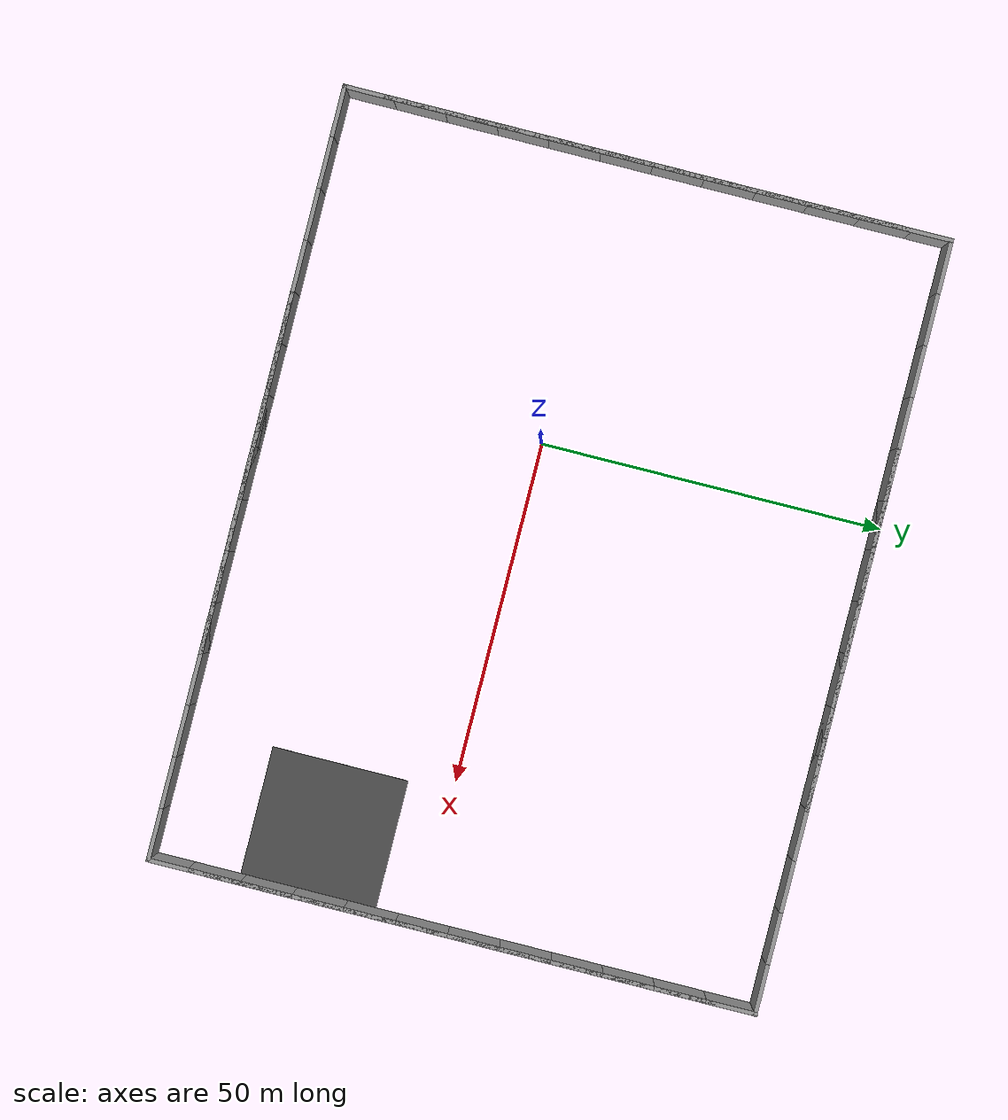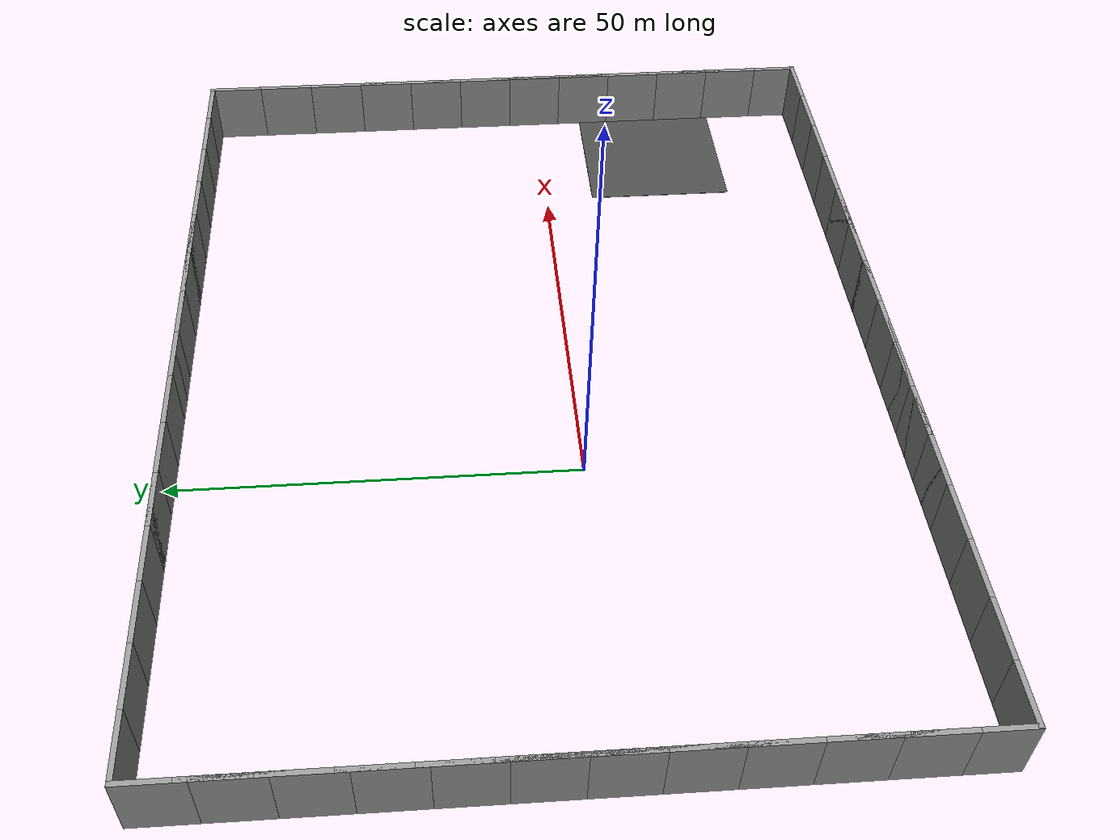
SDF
<sdf version="1.7">
 <world name="default">
  <scene>
   <grid>0</grid>
   <origin_visual>0</origin_visual>
   <ambient>0.85 0.85 0.85 1</ambient>
   <sky><clouds><speed>12</speed></clouds></sky>
   <background>0.35 0.35 0.35 1</background>
   <shadows>1</shadows>
  </scene>
  <physics name="default_physics" default="0" type="ode">
   <max_step_size>0.005</max_step_size>
   <real_time_factor>1</real_time_factor>
   <real_time_update_rate>200</real_time_update_rate>
  </physics>
  <light name="sun" type="directional">
   <pose>0 0 1000 0 -0 0</pose>
   <diffuse>0.8 0.8 0.8 1</diffuse>
   <specular>0.5 0.5 0.5 1</specular>
   <attenuation>
    <range>1000</range>
    <constant>0.9</constant>
    <linear>0.01</linear>
    <quadratic>0.001</quadratic>
   </attenuation>
   <direction>-0.5 0.1 -0.4</direction>
   <spot><inner_angle>0</inner_angle><outer_angle>0</outer_angle><falloff>0</falloff></spot>
  </light>
  <model name="ground_plane">
   <static>1</static>
   <link name="link">
    <collision name="collision">
     <geometry><plane><normal>0 0 1</normal><size>100 100</size></plane></geometry>
     <surface><friction><ode><mu>100</mu><mu2>50</mu2></ode></friction></surface>
    </collision>
   </link>
  </model>
  <model name="asphalt_plane_74">
   <static>1</static>
   <pose>61.581 -16.664 0 0 -0 0</pose>
   <link name="link">
    <visual name="visual">
     <geometry><box><size>20 20 0.05</size></box></geometry>
     <material>
      <script>
       <uri>model://asphalt_plane/materials/scripts</uri>
       <uri>model://asphalt_plane/materials/textures</uri>
       <name>vrc/asphalt</name>
      </script>
     </material>
    </visual>
   </link>
  </model>
  <gravity>0 0 -9.8</gravity>
  <magnetic_field>6e-06 2.3e-05 -4.2e-05</magnetic_field>
  <atmosphere type="adiabatic"/>
  <spherical_coordinates>
   <surface_model>EARTH_WGS84</surface_model>
   <latitude_deg>0</latitude_deg>
   <longitude_deg>0</longitude_deg>
   <elevation>0</elevation>
   <heading_deg>0</heading_deg>
  </spherical_coordinates>
  <model name="grey_wall">
   <static>1</static>
   <link name="link">
    <pose>0 0 1.4 0 -0 0</pose>
    <collision name="collision"><geometry><box><size>7.5 0.2 2.8</size></box></geometry></collision>
    <visual name="visual">
     <cast_shadows>0</cast_shadows>
     <geometry><box><size>7.5 0.2 2.8</size></box></geometry>
     <material>
      <script>
       <uri>model://grey_wall/materials/scripts</uri>
       <uri>model://grey_wall/materials/textures</uri>
       <name>vrc/grey_wall</name>
      </script>
     </material>
    </visual>
   </link>
   <pose>-10.2398 49 0 0 -0 0</pose>
  </model>
  <model name="grey_wall_clone">
   <static>1</static>
   <link name="link">
    <pose>0 0 1.4 0 -0 0</pose>
    <collision name="collision"><geometry><box><size>7.5 0.2 2.8</size></box></geometry></collision>
    <visual name="visual">
     <cast_shadows>0</cast_shadows>
     <geometry><box><size>7.5 0.2 2.8</size></box></geometry>
     <material>
      <script>
       <uri>model://grey_wall/materials/scripts</uri>
       <uri>model://grey_wall/materials/textures</uri>
       <name>vrc/grey_wall</name>
      </script>
     </material>
    </visual>
   </link>
   <pose>-3 49 0 0 -0 0</pose>
  </model>
  <model name="grey_wall_clone_clone">
   <static>1</static>
   <link name="link">
    <pose>0 0 1.4 0 -0 0</pose>
    <collision name="collision"><geometry><box><size>7.5 0.2 2.8</size></box></geometry></collision>
    <visual name="visual">
     <cast_shadows>0</cast_shadows>
     <geometry><box><size>7.5 0.2 2.8</size></box></geometry>
     <material>
      <script>
       <uri>model://grey_wall/materials/scripts</uri>
       <uri>model://grey_wall/materials/textures</uri>
       <name>vrc/grey_wall</name>
      </script>
     </material>
    </visual>
   </link>
   <pose>4 49 0 0 -0 0</pose>
  </model>
  <model name="grey_wall_clone_0">
   <static>1</static>
   <link name="link">
    <pose>0 0 1.4 0 -0 0</pose>
    <collision name="collision"><geometry><box><size>7.5 0.2 2.8</size></box></geometry></collision>
    <visual name="visual">
     <cast_shadows>0</cast_shadows>
     <geometry><box><size>7.5 0.2 2.8</size></box></geometry>
     <material>
      <script>
       <uri>model://grey_wall/materials/scripts</uri>
       <uri>model://grey_wall/materials/textures</uri>
       <name>vrc/grey_wall</name>
      </script>
     </material>
    </visual>
   </link>
   <pose>11 49 0 0 -0 0</pose>
  </model>
  <model name="grey_wall_clone_1">
   <static>1</static>
   <link name="link">
    <pose>0 0 1.4 0 -0 0</pose>
    <collision name="collision"><geometry><box><size>7.5 0.2 2.8</size></box></geometry></collision>
    <visual name="visual">
     <cast_shadows>0</cast_shadows>
     <geometry><box><size>7.5 0.2 2.8</size></box></geometry>
     <material>
      <script>
       <uri>model://grey_wall/materials/scripts</uri>
       <uri>model://grey_wall/materials/textures</uri>
       <name>vrc/grey_wall</name>
      </script>
     </material>
    </visual>
   </link>
   <pose>18.3436 49 0 0 -0 0</pose>
  </model>
  <model name="grey_wall_clone_2">
   <static>1</static>
   <link name="link">
    <pose>0 0 1.4 0 -0 0</pose>
    <collision name="collision"><geometry><box><size>7.5 0.2 2.8</size></box></geometry></collision>
    <visual name="visual">
     <cast_shadows>0</cast_shadows>
     <geometry><box><size>7.5 0.2 2.8</size></box></geometry>
     <material>
      <script>
       <uri>model://grey_wall/materials/scripts</uri>
       <uri>model://grey_wall/materials/textures</uri>
       <name>vrc/grey_wall</name>
      </script>
     </material>
    </visual>
   </link>
   <pose>25.3604 49 0 0 -0 0</pose>
  </model>
  <model name="grey_wall_clone_3">
   <static>1</static>
   <link name="link">
    <pose>0 0 1.4 0 -0 0</pose>
    <collision name="collision"><geometry><box><size>7.5 0.2 2.8</size></box></geometry></collision>
    <visual name="visual">
     <cast_shadows>0</cast_shadows>
     <geometry><box><size>7.5 0.2 2.8</size></box></geometry>
     <material>
      <script>
       <uri>model://grey_wall/materials/scripts</uri>
       <uri>model://grey_wall/materials/textures</uri>
       <name>vrc/grey_wall</name>
      </script>
     </material>
    </visual>
   </link>
   <pose>32.4506 49 0 0 -0 0</pose>
  </model>
  <model name="grey_wall_long">
   <static>1</static>
   <link name="wall_0">
    <pose>-37.5 0 4.2 0 -0 0</pose>
    <collision name="collision"><geometry><box><size>7.5 0.6 8.4</size></box></geometry></collision>
    <visual name="visual">
     <cast_shadows>0</cast_shadows>
     <geometry><box><size>7.5 0.6 8.4</size></box></geometry>
     <material>
      <script>
       <uri>model://grey_wall/materials/scripts</uri>
       <uri>model://grey_wall/materials/textures</uri>
       <name>vrc/grey_wall</name>
      </script>
     </material>
     <double_sided>1</double_sided>
    </visual>
   </link>
   <link name="wall_1">
    <pose>-30 0 4.2 0 -0 0</pose>
    <collision name="collision"><geometry><box><size>7.5 0.6 8.4</size></box></geometry></collision>
    <visual name="visual">
     <geometry><box><size>7.5 0.6 8.4</size></box></geometry>
     <material>
      <script>
       <uri>model://grey_wall/materials/scripts</uri>
       <uri>model://grey_wall/materials/textures</uri>
       <name>vrc/grey_wall</name>
      </script>
     </material>
     <double_sided>1</double_sided>
    </visual>
   </link>
   <link name="wall_2">
    <pose>-22.5 0 4.2 0 -0 0</pose>
    <collision name="collision"><geometry><box><size>7.5 0.6 8.4</size></box></geometry></collision>
    <visual name="visual">
     <geometry><box><size>7.5 0.6 8.4</size></box></geometry>
     <material>
      <script>
       <uri>model://grey_wall/materials/scripts</uri>
       <uri>model://grey_wall/materials/textures</uri>
       <name>vrc/grey_wall</name>
      </script>
     </material>
     <double_sided>1</double_sided>
    </visual>
   </link>
   <link name="wall_3">
    <pose>-15 0 4.2 0 -0 0</pose>
    <collision name="collision"><geometry><box><size>7.5 0.6 8.4</size></box></geometry></collision>
    <visual name="visual">
     <geometry><box><size>7.5 0.6 8.4</size></box></geometry>
     <material>
      <script>
       <uri>model://grey_wall/materials/scripts</uri>
       <uri>model://grey_wall/materials/textures</uri>
       <name>vrc/grey_wall</name>
      </script>
     </material>
     <double_sided>1</double_sided>
    </visual>
   </link>
   <link name="wall_4">
    <pose>-7.5 0 4.2 0 -0 0</pose>
    <collision name="collision"><geometry><box><size>7.5 0.6 8.4</size></box></geometry></collision>
    <visual name="visual">
     <geometry><box><size>7.5 0.6 8.4</size></box></geometry>
     <material>
      <script>
       <uri>model://grey_wall/materials/scripts</uri>
       <uri>model://grey_wall/materials/textures</uri>
       <name>vrc/grey_wall</name>
      </script>
     </material>
     <double_sided>1</double_sided>
    </visual>
   </link>
   <link name="wall_5">
    <pose>0 0 4.2 0 -0 0</pose>
    <collision name="collision"><geometry><box><size>7.5 0.6 8.4</size></box></geometry></collision>
    <visual name="visual">
     <geometry><box><size>7.5 0.6 8.4</size></box></geometry>
     <material>
      <script>
       <uri>model://grey_wall/materials/scripts</uri>
       <uri>model://grey_wall/materials/textures</uri>
       <name>vrc/grey_wall</name>
      </script>
     </material>
     <double_sided>1</double_sided>
    </visual>
   </link>
   <link name="wall_6">
    <pose>7.5 0 4.2 0 -0 0</pose>
    <collision name="collision"><geometry><box><size>7.5 0.6 8.4</size></box></geometry></collision>
    <visual name="visual">
     <geometry><box><size>7.5 0.6 8.4</size></box></geometry>
     <material>
      <script>
       <uri>model://grey_wall/materials/scripts</uri>
       <uri>model://grey_wall/materials/textures</uri>
       <name>vrc/grey_wall</name>
      </script>
     </material>
     <double_sided>1</double_sided>
    </visual>
   </link>
   <link name="wall_7">
    <pose>15 0 4.2 0 -0 0</pose>
    <collision name="collision"><geometry><box><size>7.5 0.6 8.4</size></box></geometry></collision>
    <visual name="visual">
     <geometry><box><size>7.5 0.6 8.4</size></box></geometry>
     <material>
      <script>
       <uri>model://grey_wall/materials/scripts</uri>
       <uri>model://grey_wall/materials/textures</uri>
       <name>vrc/grey_wall</name>
      </script>
     </material>
     <double_sided>1</double_sided>
    </visual>
   </link>
   <link name="wall_8">
    <pose>22.5 0 4.2 0 -0 0</pose>
    <collision name="collision"><geometry><box><size>7.5 0.6 8.4</size></box></geometry></collision>
    <visual name="visual">
     <geometry><box><size>7.5 0.6 8.4</size></box></geometry>
     <material>
      <script>
       <uri>model://grey_wall/materials/scripts</uri>
       <uri>model://grey_wall/materials/textures</uri>
       <name>vrc/grey_wall</name>
      </script>
     </material>
     <double_sided>1</double_sided>
    </visual>
   </link>
   <link name="wall_9">
    <pose>30 0 4.2 0 -0 0</pose>
    <collision name="collision"><geometry><box><size>7.5 0.6 8.4</size></box></geometry></collision>
    <visual name="visual">
     <geometry><box><size>7.5 0.6 8.4</size></box></geometry>
     <material>
      <script>
       <uri>model://grey_wall/materials/scripts</uri>
       <uri>model://grey_wall/materials/textures</uri>
       <name>vrc/grey_wall</name>
      </script>
     </material>
     <double_sided>1</double_sided>
    </visual>
   </link>
   <link name="wall_10">
    <pose>37.5 0 4.2 0 -0 0</pose>
    <collision name="collision"><geometry><box><size>7.5 0.6 8.4</size></box></geometry></collision>
    <visual name="visual">
     <geometry><box><size>7.5 0.6 8.4</size></box></geometry>
     <material>
      <script>
       <uri>model://grey_wall/materials/scripts</uri>
       <uri>model://grey_wall/materials/textures</uri>
       <name>vrc/grey_wall</name>
      </script>
     </material>
     <double_sided>1</double_sided>
    </visual>
   </link>
   <pose>-0.464 -39.11 0 0 -0 0</pose>
  </model>
  <model name="grey_wall_long_clone">
   <static>1</static>
   <link name="wall_0">
    <pose>-37.5 0 4.2 0 -0 0</pose>
    <collision name="collision"><geometry><box><size>7.5 0.6 8.4</size></box></geometry></collision>
    <visual name="visual">
     <cast_shadows>0</cast_shadows>
     <geometry><box><size>7.5 0.6 8.4</size></box></geometry>
     <material>
      <script>
       <uri>model://grey_wall/materials/scripts</uri>
       <uri>model://grey_wall/materials/textures</uri>
       <name>vrc/grey_wall</name>
      </script>
     </material>
     <double_sided>1</double_sided>
    </visual>
   </link>
   <link name="wall_1">
    <pose>-30 0 4.2 0 -0 0</pose>
    <collision name="collision"><geometry><box><size>7.5 0.6 8.4</size></box></geometry></collision>
    <visual name="visual">
     <geometry><box><size>7.5 0.6 8.4</size></box></geometry>
     <material>
      <script>
       <uri>model://grey_wall/materials/scripts</uri>
       <uri>model://grey_wall/materials/textures</uri>
       <name>vrc/grey_wall</name>
      </script>
     </material>
     <double_sided>1</double_sided>
    </visual>
   </link>
   <link name="wall_2">
    <pose>-22.5 0 4.2 0 -0 0</pose>
    <collision name="collision"><geometry><box><size>7.5 0.6 8.4</size></box></geometry></collision>
    <visual name="visual">
     <geometry><box><size>7.5 0.6 8.4</size></box></geometry>
     <material>
      <script>
       <uri>model://grey_wall/materials/scripts</uri>
       <uri>model://grey_wall/materials/textures</uri>
       <name>vrc/grey_wall</name>
      </script>
     </material>
     <double_sided>1</double_sided>
    </visual>
   </link>
   <link name="wall_3">
    <pose>-15 0 4.2 0 -0 0</pose>
    <collision name="collision"><geometry><box><size>7.5 0.6 8.4</size></box></geometry></collision>
    <visual name="visual">
     <geometry><box><size>7.5 0.6 8.4</size></box></geometry>
     <material>
      <script>
       <uri>model://grey_wall/materials/scripts</uri>
       <uri>model://grey_wall/materials/textures</uri>
       <name>vrc/grey_wall</name>
      </script>
     </material>
     <double_sided>1</double_sided>
    </visual>
   </link>
   <link name="wall_4">
    <pose>-7.5 0 4.2 0 -0 0</pose>
    <collision name="collision"><geometry><box><size>7.5 0.6 8.4</size></box></geometry></collision>
    <visual name="visual">
     <geometry><box><size>7.5 0.6 8.4</size></box></geometry>
     <material>
      <script>
       <uri>model://grey_wall/materials/scripts</uri>
       <uri>model://grey_wall/materials/textures</uri>
       <name>vrc/grey_wall</name>
      </script>
     </material>
     <double_sided>1</double_sided>
    </visual>
   </link>
   <link name="wall_5">
    <pose>0 0 4.2 0 -0 0</pose>
    <collision name="collision"><geometry><box><size>7.5 0.6 8.4</size></box></geometry></collision>
    <visual name="visual">
     <geometry><box><size>7.5 0.6 8.4</size></box></geometry>
     <material>
      <script>
       <uri>model://grey_wall/materials/scripts</uri>
       <uri>model://grey_wall/materials/textures</uri>
       <name>vrc/grey_wall</name>
      </script>
     </material>
     <double_sided>1</double_sided>
    </visual>
   </link>
   <link name="wall_6">
    <pose>7.5 0 4.2 0 -0 0</pose>
    <collision name="collision"><geometry><box><size>7.5 0.6 8.4</size></box></geometry></collision>
    <visual name="visual">
     <geometry><box><size>7.5 0.6 8.4</size></box></geometry>
     <material>
      <script>
       <uri>model://grey_wall/materials/scripts</uri>
       <uri>model://grey_wall/materials/textures</uri>
       <name>vrc/grey_wall</name>
      </script>
     </material>
     <double_sided>1</double_sided>
    </visual>
   </link>
   <link name="wall_7">
    <pose>15 0 4.2 0 -0 0</pose>
    <collision name="collision"><geometry><box><size>7.5 0.6 8.4</size></box></geometry></collision>
    <visual name="visual">
     <geometry><box><size>7.5 0.6 8.4</size></box></geometry>
     <material>
      <script>
       <uri>model://grey_wall/materials/scripts</uri>
       <uri>model://grey_wall/materials/textures</uri>
       <name>vrc/grey_wall</name>
      </script>
     </material>
     <double_sided>1</double_sided>
    </visual>
   </link>
   <link name="wall_8">
    <pose>22.5 0 4.2 0 -0 0</pose>
    <collision name="collision"><geometry><box><size>7.5 0.6 8.4</size></box></geometry></collision>
    <visual name="visual">
     <geometry><box><size>7.5 0.6 8.4</size></box></geometry>
     <material>
      <script>
       <uri>model://grey_wall/materials/scripts</uri>
       <uri>model://grey_wall/materials/textures</uri>
       <name>vrc/grey_wall</name>
      </script>
     </material>
     <double_sided>1</double_sided>
    </visual>
   </link>
   <link name="wall_9">
    <pose>30 0 4.2 0 -0 0</pose>
    <collision name="collision"><geometry><box><size>7.5 0.6 8.4</size></box></geometry></collision>
    <visual name="visual">
     <geometry><box><size>7.5 0.6 8.4</size></box></geometry>
     <material>
      <script>
       <uri>model://grey_wall/materials/scripts</uri>
       <uri>model://grey_wall/materials/textures</uri>
       <name>vrc/grey_wall</name>
      </script>
     </material>
     <double_sided>1</double_sided>
    </visual>
   </link>
   <link name="wall_10">
    <pose>37.5 0 4.2 0 -0 0</pose>
    <collision name="collision"><geometry><box><size>7.5 0.6 8.4</size></box></geometry></collision>
    <visual name="visual">
     <geometry><box><size>7.5 0.6 8.4</size></box></geometry>
     <material>
      <script>
       <uri>model://grey_wall/materials/scripts</uri>
       <uri>model://grey_wall/materials/textures</uri>
       <name>vrc/grey_wall</name>
      </script>
     </material>
     <double_sided>1</double_sided>
    </visual>
   </link>
   <pose>29.4185 -39.11 0 0 -0 0</pose>
  </model>
  <model name="grey_wall_long_clone_clone">
   <static>1</static>
   <link name="wall_0">
    <pose>-37.5 0 4.2 0 -0 0</pose>
    <collision name="collision"><geometry><box><size>7.5 0.6 8.4</size></box></geometry></collision>
    <visual name="visual">
     <cast_shadows>0</cast_shadows>
     <geometry><box><size>7.5 0.6 8.4</size></box></geometry>
     <material>
      <script>
       <uri>model://grey_wall/materials/scripts</uri>
       <uri>model://grey_wall/materials/textures</uri>
       <name>vrc/grey_wall</name>
      </script>
     </material>
     <double_sided>1</double_sided>
    </visual>
   </link>
   <link name="wall_1">
    <pose>-30 0 4.2 0 -0 0</pose>
    <collision name="collision"><geometry><box><size>7.5 0.6 8.4</size></box></geometry></collision>
    <visual name="visual">
     <geometry><box><size>7.5 0.6 8.4</size></box></geometry>
     <material>
      <script>
       <uri>model://grey_wall/materials/scripts</uri>
       <uri>model://grey_wall/materials/textures</uri>
       <name>vrc/grey_wall</name>
      </script>
     </material>
     <double_sided>1</double_sided>
    </visual>
   </link>
   <link name="wall_2">
    <pose>-22.5 0 4.2 0 -0 0</pose>
    <collision name="collision"><geometry><box><size>7.5 0.6 8.4</size></box></geometry></collision>
    <visual name="visual">
     <geometry><box><size>7.5 0.6 8.4</size></box></geometry>
     <material>
      <script>
       <uri>model://grey_wall/materials/scripts</uri>
       <uri>model://grey_wall/materials/textures</uri>
       <name>vrc/grey_wall</name>
      </script>
     </material>
     <double_sided>1</double_sided>
    </visual>
   </link>
   <link name="wall_3">
    <pose>-15 0 4.2 0 -0 0</pose>
    <collision name="collision"><geometry><box><size>7.5 0.6 8.4</size></box></geometry></collision>
    <visual name="visual">
     <geometry><box><size>7.5 0.6 8.4</size></box></geometry>
     <material>
      <script>
       <uri>model://grey_wall/materials/scripts</uri>
       <uri>model://grey_wall/materials/textures</uri>
       <name>vrc/grey_wall</name>
      </script>
     </material>
     <double_sided>1</double_sided>
    </visual>
   </link>
   <link name="wall_4">
    <pose>-7.5 0 4.2 0 -0 0</pose>
    <collision name="collision"><geometry><box><size>7.5 0.6 8.4</size></box></geometry></collision>
    <visual name="visual">
     <geometry><box><size>7.5 0.6 8.4</size></box></geometry>
     <material>
      <script>
       <uri>model://grey_wall/materials/scripts</uri>
       <uri>model://grey_wall/materials/textures</uri>
       <name>vrc/grey_wall</name>
      </script>
     </material>
     <double_sided>1</double_sided>
    </visual>
   </link>
   <link name="wall_5">
    <pose>0 0 4.2 0 -0 0</pose>
    <collision name="collision"><geometry><box><size>7.5 0.6 8.4</size></box></geometry></collision>
    <visual name="visual">
     <geometry><box><size>7.5 0.6 8.4</size></box></geometry>
     <material>
      <script>
       <uri>model://grey_wall/materials/scripts</uri>
       <uri>model://grey_wall/materials/textures</uri>
       <name>vrc/grey_wall</name>
      </script>
     </material>
     <double_sided>1</double_sided>
    </visual>
   </link>
   <link name="wall_6">
    <pose>7.5 0 4.2 0 -0 0</pose>
    <collision name="collision"><geometry><box><size>7.5 0.6 8.4</size></box></geometry></collision>
    <visual name="visual">
     <geometry><box><size>7.5 0.6 8.4</size></box></geometry>
     <material>
      <script>
       <uri>model://grey_wall/materials/scripts</uri>
       <uri>model://grey_wall/materials/textures</uri>
       <name>vrc/grey_wall</name>
      </script>
     </material>
     <double_sided>1</double_sided>
    </visual>
   </link>
   <link name="wall_7">
    <pose>15 0 4.2 0 -0 0</pose>
    <collision name="collision"><geometry><box><size>7.5 0.6 8.4</size></box></geometry></collision>
    <visual name="visual">
     <geometry><box><size>7.5 0.6 8.4</size></box></geometry>
     <material>
      <script>
       <uri>model://grey_wall/materials/scripts</uri>
       <uri>model://grey_wall/materials/textures</uri>
       <name>vrc/grey_wall</name>
      </script>
     </material>
     <double_sided>1</double_sided>
    </visual>
   </link>
   <link name="wall_8">
    <pose>22.5 0 4.2 0 -0 0</pose>
    <collision name="collision"><geometry><box><size>7.5 0.6 8.4</size></box></geometry></collision>
    <visual name="visual">
     <geometry><box><size>7.5 0.6 8.4</size></box></geometry>
     <material>
      <script>
       <uri>model://grey_wall/materials/scripts</uri>
       <uri>model://grey_wall/materials/textures</uri>
       <name>vrc/grey_wall</name>
      </script>
     </material>
     <double_sided>1</double_sided>
    </visual>
   </link>
   <link name="wall_9">
    <pose>30 0 4.2 0 -0 0</pose>
    <collision name="collision"><geometry><box><size>7.5 0.6 8.4</size></box></geometry></collision>
    <visual name="visual">
     <geometry><box><size>7.5 0.6 8.4</size></box></geometry>
     <material>
      <script>
       <uri>model://grey_wall/materials/scripts</uri>
       <uri>model://grey_wall/materials/textures</uri>
       <name>vrc/grey_wall</name>
      </script>
     </material>
     <double_sided>1</double_sided>
    </visual>
   </link>
   <link name="wall_10">
    <pose>37.5 0 4.2 0 -0 0</pose>
    <collision name="collision"><geometry><box><size>7.5 0.6 8.4</size></box></geometry></collision>
    <visual name="visual">
     <geometry><box><size>7.5 0.6 8.4</size></box></geometry>
     <material>
      <script>
       <uri>model://grey_wall/materials/scripts</uri>
       <uri>model://grey_wall/materials/textures</uri>
       <name>vrc/grey_wall</name>
      </script>
     </material>
     <double_sided>1</double_sided>
    </visual>
   </link>
   <pose>70.5933 7.9574 -0 0 -0 1.57079</pose>
  </model>
  <model name="grey_wall_long_clone_0">
   <static>1</static>
   <link name="wall_0">
    <pose>-37.5 0 4.2 0 -0 0</pose>
    <collision name="collision"><geometry><box><size>7.5 0.6 8.4</size></box></geometry></collision>
    <visual name="visual">
     <cast_shadows>0</cast_shadows>
     <geometry><box><size>7.5 0.6 8.4</size></box></geometry>
     <material>
      <script>
       <uri>model://grey_wall/materials/scripts</uri>
       <uri>model://grey_wall/materials/textures</uri>
       <name>vrc/grey_wall</name>
      </script>
     </material>
     <double_sided>1</double_sided>
    </visual>
   </link>
   <link name="wall_1">
    <pose>-30 0 4.2 0 -0 0</pose>
    <collision name="collision"><geometry><box><size>7.5 0.6 8.4</size></box></geometry></collision>
    <visual name="visual">
     <geometry><box><size>7.5 0.6 8.4</size></box></geometry>
     <material>
      <script>
       <uri>model://grey_wall/materials/scripts</uri>
       <uri>model://grey_wall/materials/textures</uri>
       <name>vrc/grey_wall</name>
      </script>
     </material>
     <double_sided>1</double_sided>
    </visual>
   </link>
   <link name="wall_2">
    <pose>-22.5 0 4.2 0 -0 0</pose>
    <collision name="collision"><geometry><box><size>7.5 0.6 8.4</size></box></geometry></collision>
    <visual name="visual">
     <geometry><box><size>7.5 0.6 8.4</size></box></geometry>
     <material>
      <script>
       <uri>model://grey_wall/materials/scripts</uri>
       <uri>model://grey_wall/materials/textures</uri>
       <name>vrc/grey_wall</name>
      </script>
     </material>
     <double_sided>1</double_sided>
    </visual>
   </link>
   <link name="wall_3">
    <pose>-15 0 4.2 0 -0 0</pose>
    <collision name="collision"><geometry><box><size>7.5 0.6 8.4</size></box></geometry></collision>
    <visual name="visual">
     <geometry><box><size>7.5 0.6 8.4</size></box></geometry>
     <material>
      <script>
       <uri>model://grey_wall/materials/scripts</uri>
       <uri>model://grey_wall/materials/textures</uri>
       <name>vrc/grey_wall</name>
      </script>
     </material>
     <double_sided>1</double_sided>
    </visual>
   </link>
   <link name="wall_4">
    <pose>-7.5 0 4.2 0 -0 0</pose>
    <collision name="collision"><geometry><box><size>7.5 0.6 8.4</size></box></geometry></collision>
    <visual name="visual">
     <geometry><box><size>7.5 0.6 8.4</size></box></geometry>
     <material>
      <script>
       <uri>model://grey_wall/materials/scripts</uri>
       <uri>model://grey_wall/materials/textures</uri>
       <name>vrc/grey_wall</name>
      </script>
     </material>
     <double_sided>1</double_sided>
    </visual>
   </link>
   <link name="wall_5">
    <pose>0 0 4.2 0 -0 0</pose>
    <collision name="collision"><geometry><box><size>7.5 0.6 8.4</size></box></geometry></collision>
    <visual name="visual">
     <geometry><box><size>7.5 0.6 8.4</size></box></geometry>
     <material>
      <script>
       <uri>model://grey_wall/materials/scripts</uri>
       <uri>model://grey_wall/materials/textures</uri>
       <name>vrc/grey_wall</name>
      </script>
     </material>
     <double_sided>1</double_sided>
    </visual>
   </link>
   <link name="wall_6">
    <pose>7.5 0 4.2 0 -0 0</pose>
    <collision name="collision"><geometry><box><size>7.5 0.6 8.4</size></box></geometry></collision>
    <visual name="visual">
     <geometry><box><size>7.5 0.6 8.4</size></box></geometry>
     <material>
      <script>
       <uri>model://grey_wall/materials/scripts</uri>
       <uri>model://grey_wall/materials/textures</uri>
       <name>vrc/grey_wall</name>
      </script>
     </material>
     <double_sided>1</double_sided>
    </visual>
   </link>
   <link name="wall_7">
    <pose>15 0 4.2 0 -0 0</pose>
    <collision name="collision"><geometry><box><size>7.5 0.6 8.4</size></box></geometry></collision>
    <visual name="visual">
     <geometry><box><size>7.5 0.6 8.4</size></box></geometry>
     <material>
      <script>
       <uri>model://grey_wall/materials/scripts</uri>
       <uri>model://grey_wall/materials/textures</uri>
       <name>vrc/grey_wall</name>
      </script>
     </material>
     <double_sided>1</double_sided>
    </visual>
   </link>
   <link name="wall_8">
    <pose>22.5 0 4.2 0 -0 0</pose>
    <collision name="collision"><geometry><box><size>7.5 0.6 8.4</size></box></geometry></collision>
    <visual name="visual">
     <geometry><box><size>7.5 0.6 8.4</size></box></geometry>
     <material>
      <script>
       <uri>model://grey_wall/materials/scripts</uri>
       <uri>model://grey_wall/materials/textures</uri>
       <name>vrc/grey_wall</name>
      </script>
     </material>
     <double_sided>1</double_sided>
    </visual>
   </link>
   <link name="wall_9">
    <pose>30 0 4.2 0 -0 0</pose>
    <collision name="collision"><geometry><box><size>7.5 0.6 8.4</size></box></geometry></collision>
    <visual name="visual">
     <geometry><box><size>7.5 0.6 8.4</size></box></geometry>
     <material>
      <script>
       <uri>model://grey_wall/materials/scripts</uri>
       <uri>model://grey_wall/materials/textures</uri>
       <name>vrc/grey_wall</name>
      </script>
     </material>
     <double_sided>1</double_sided>
    </visual>
   </link>
   <link name="wall_10">
    <pose>37.5 0 4.2 0 -0 0</pose>
    <collision name="collision"><geometry><box><size>7.5 0.6 8.4</size></box></geometry></collision>
    <visual name="visual">
     <geometry><box><size>7.5 0.6 8.4</size></box></geometry>
     <material>
      <script>
       <uri>model://grey_wall/materials/scripts</uri>
       <uri>model://grey_wall/materials/textures</uri>
       <name>vrc/grey_wall</name>
      </script>
     </material>
     <double_sided>1</double_sided>
    </visual>
   </link>
   <pose>-0.0062 48.8707 0 0 -0 0</pose>
  </model>
  <model name="grey_wall_long_clone_0_clone">
   <static>1</static>
   <link name="wall_0">
    <pose>-37.5 0 4.2 0 -0 0</pose>
    <collision name="collision"><geometry><box><size>7.5 0.6 8.4</size></box></geometry></collision>
    <visual name="visual">
     <cast_shadows>0</cast_shadows>
     <geometry><box><size>7.5 0.6 8.4</size></box></geometry>
     <material>
      <script>
       <uri>model://grey_wall/materials/scripts</uri>
       <uri>model://grey_wall/materials/textures</uri>
       <name>vrc/grey_wall</name>
      </script>
     </material>
     <double_sided>1</double_sided>
    </visual>
   </link>
   <link name="wall_1">
    <pose>-30 0 4.2 0 -0 0</pose>
    <collision name="collision"><geometry><box><size>7.5 0.6 8.4</size></box></geometry></collision>
    <visual name="visual">
     <geometry><box><size>7.5 0.6 8.4</size></box></geometry>
     <material>
      <script>
       <uri>model://grey_wall/materials/scripts</uri>
       <uri>model://grey_wall/materials/textures</uri>
       <name>vrc/grey_wall</name>
      </script>
     </material>
     <double_sided>1</double_sided>
    </visual>
   </link>
   <link name="wall_2">
    <pose>-22.5 0 4.2 0 -0 0</pose>
    <collision name="collision"><geometry><box><size>7.5 0.6 8.4</size></box></geometry></collision>
    <visual name="visual">
     <geometry><box><size>7.5 0.6 8.4</size></box></geometry>
     <material>
      <script>
       <uri>model://grey_wall/materials/scripts</uri>
       <uri>model://grey_wall/materials/textures</uri>
       <name>vrc/grey_wall</name>
      </script>
     </material>
     <double_sided>1</double_sided>
    </visual>
   </link>
   <link name="wall_3">
    <pose>-15 0 4.2 0 -0 0</pose>
    <collision name="collision"><geometry><box><size>7.5 0.6 8.4</size></box></geometry></collision>
    <visual name="visual">
     <geometry><box><size>7.5 0.6 8.4</size></box></geometry>
     <material>
      <script>
       <uri>model://grey_wall/materials/scripts</uri>
       <uri>model://grey_wall/materials/textures</uri>
       <name>vrc/grey_wall</name>
      </script>
     </material>
     <double_sided>1</double_sided>
    </visual>
   </link>
   <link name="wall_4">
    <pose>-7.5 0 4.2 0 -0 0</pose>
    <collision name="collision"><geometry><box><size>7.5 0.6 8.4</size></box></geometry></collision>
    <visual name="visual">
     <geometry><box><size>7.5 0.6 8.4</size></box></geometry>
     <material>
      <script>
       <uri>model://grey_wall/materials/scripts</uri>
       <uri>model://grey_wall/materials/textures</uri>
       <name>vrc/grey_wall</name>
      </script>
     </material>
     <double_sided>1</double_sided>
    </visual>
   </link>
   <link name="wall_5">
    <pose>0 0 4.2 0 -0 0</pose>
    <collision name="collision"><geometry><box><size>7.5 0.6 8.4</size></box></geometry></collision>
    <visual name="visual">
     <geometry><box><size>7.5 0.6 8.4</size></box></geometry>
     <material>
      <script>
       <uri>model://grey_wall/materials/scripts</uri>
       <uri>model://grey_wall/materials/textures</uri>
       <name>vrc/grey_wall</name>
      </script>
     </material>
     <double_sided>1</double_sided>
    </visual>
   </link>
   <link name="wall_6">
    <pose>7.5 0 4.2 0 -0 0</pose>
    <collision name="collision"><geometry><box><size>7.5 0.6 8.4</size></box></geometry></collision>
    <visual name="visual">
     <geometry><box><size>7.5 0.6 8.4</size></box></geometry>
     <material>
      <script>
       <uri>model://grey_wall/materials/scripts</uri>
       <uri>model://grey_wall/materials/textures</uri>
       <name>vrc/grey_wall</name>
      </script>
     </material>
     <double_sided>1</double_sided>
    </visual>
   </link>
   <link name="wall_7">
    <pose>15 0 4.2 0 -0 0</pose>
    <collision name="collision"><geometry><box><size>7.5 0.6 8.4</size></box></geometry></collision>
    <visual name="visual">
     <geometry><box><size>7.5 0.6 8.4</size></box></geometry>
     <material>
      <script>
       <uri>model://grey_wall/materials/scripts</uri>
       <uri>model://grey_wall/materials/textures</uri>
       <name>vrc/grey_wall</name>
      </script>
     </material>
     <double_sided>1</double_sided>
    </visual>
   </link>
   <link name="wall_8">
    <pose>22.5 0 4.2 0 -0 0</pose>
    <collision name="collision"><geometry><box><size>7.5 0.6 8.4</size></box></geometry></collision>
    <visual name="visual">
     <geometry><box><size>7.5 0.6 8.4</size></box></geometry>
     <material>
      <script>
       <uri>model://grey_wall/materials/scripts</uri>
       <uri>model://grey_wall/materials/textures</uri>
       <name>vrc/grey_wall</name>
      </script>
     </material>
     <double_sided>1</double_sided>
    </visual>
   </link>
   <link name="wall_9">
    <pose>30 0 4.2 0 -0 0</pose>
    <collision name="collision"><geometry><box><size>7.5 0.6 8.4</size></box></geometry></collision>
    <visual name="visual">
     <geometry><box><size>7.5 0.6 8.4</size></box></geometry>
     <material>
      <script>
       <uri>model://grey_wall/materials/scripts</uri>
       <uri>model://grey_wall/materials/textures</uri>
       <name>vrc/grey_wall</name>
      </script>
     </material>
     <double_sided>1</double_sided>
    </visual>
   </link>
   <link name="wall_10">
    <pose>37.5 0 4.2 0 -0 0</pose>
    <collision name="collision"><geometry><box><size>7.5 0.6 8.4</size></box></geometry></collision>
    <visual name="visual">
     <geometry><box><size>7.5 0.6 8.4</size></box></geometry>
     <material>
      <script>
       <uri>model://grey_wall/materials/scripts</uri>
       <uri>model://grey_wall/materials/textures</uri>
       <name>vrc/grey_wall</name>
      </script>
     </material>
     <double_sided>1</double_sided>
    </visual>
   </link>
   <pose>29.6655 48.8707 0 0 -0 0</pose>
  </model>
  <model name="grey_wall_long_clone_0_clone_0">
   <static>1</static>
   <link name="wall_0">
    <pose>-37.5 0 4.2 0 -0 0</pose>
    <collision name="collision"><geometry><box><size>7.5 0.6 8.4</size></box></geometry></collision>
    <visual name="visual">
     <cast_shadows>0</cast_shadows>
     <geometry><box><size>7.5 0.6 8.4</size></box></geometry>
     <material>
      <script>
       <uri>model://grey_wall/materials/scripts</uri>
       <uri>model://grey_wall/materials/textures</uri>
       <name>vrc/grey_wall</name>
      </script>
     </material>
     <double_sided>1</double_sided>
    </visual>
   </link>
   <link name="wall_1">
    <pose>-30 0 4.2 0 -0 0</pose>
    <collision name="collision"><geometry><box><size>7.5 0.6 8.4</size></box></geometry></collision>
    <visual name="visual">
     <geometry><box><size>7.5 0.6 8.4</size></box></geometry>
     <material>
      <script>
       <uri>model://grey_wall/materials/scripts</uri>
       <uri>model://grey_wall/materials/textures</uri>
       <name>vrc/grey_wall</name>
      </script>
     </material>
     <double_sided>1</double_sided>
    </visual>
   </link>
   <link name="wall_2">
    <pose>-22.5 0 4.2 0 -0 0</pose>
    <collision name="collision"><geometry><box><size>7.5 0.6 8.4</size></box></geometry></collision>
    <visual name="visual">
     <geometry><box><size>7.5 0.6 8.4</size></box></geometry>
     <material>
      <script>
       <uri>model://grey_wall/materials/scripts</uri>
       <uri>model://grey_wall/materials/textures</uri>
       <name>vrc/grey_wall</name>
      </script>
     </material>
     <double_sided>1</double_sided>
    </visual>
   </link>
   <link name="wall_3">
    <pose>-15 0 4.2 0 -0 0</pose>
    <collision name="collision"><geometry><box><size>7.5 0.6 8.4</size></box></geometry></collision>
    <visual name="visual">
     <geometry><box><size>7.5 0.6 8.4</size></box></geometry>
     <material>
      <script>
       <uri>model://grey_wall/materials/scripts</uri>
       <uri>model://grey_wall/materials/textures</uri>
       <name>vrc/grey_wall</name>
      </script>
     </material>
     <double_sided>1</double_sided>
    </visual>
   </link>
   <link name="wall_4">
    <pose>-7.5 0 4.2 0 -0 0</pose>
    <collision name="collision"><geometry><box><size>7.5 0.6 8.4</size></box></geometry></collision>
    <visual name="visual">
     <geometry><box><size>7.5 0.6 8.4</size></box></geometry>
     <material>
      <script>
       <uri>model://grey_wall/materials/scripts</uri>
       <uri>model://grey_wall/materials/textures</uri>
       <name>vrc/grey_wall</name>
      </script>
     </material>
     <double_sided>1</double_sided>
    </visual>
   </link>
   <link name="wall_5">
    <pose>0 0 4.2 0 -0 0</pose>
    <collision name="collision"><geometry><box><size>7.5 0.6 8.4</size></box></geometry></collision>
    <visual name="visual">
     <geometry><box><size>7.5 0.6 8.4</size></box></geometry>
     <material>
      <script>
       <uri>model://grey_wall/materials/scripts</uri>
       <uri>model://grey_wall/materials/textures</uri>
       <name>vrc/grey_wall</name>
      </script>
     </material>
     <double_sided>1</double_sided>
    </visual>
   </link>
   <link name="wall_6">
    <pose>7.5 0 4.2 0 -0 0</pose>
    <collision name="collision"><geometry><box><size>7.5 0.6 8.4</size></box></geometry></collision>
    <visual name="visual">
     <geometry><box><size>7.5 0.6 8.4</size></box></geometry>
     <material>
      <script>
       <uri>model://grey_wall/materials/scripts</uri>
       <uri>model://grey_wall/materials/textures</uri>
       <name>vrc/grey_wall</name>
      </script>
     </material>
     <double_sided>1</double_sided>
    </visual>
   </link>
   <link name="wall_7">
    <pose>15 0 4.2 0 -0 0</pose>
    <collision name="collision"><geometry><box><size>7.5 0.6 8.4</size></box></geometry></collision>
    <visual name="visual">
     <geometry><box><size>7.5 0.6 8.4</size></box></geometry>
     <material>
      <script>
       <uri>model://grey_wall/materials/scripts</uri>
       <uri>model://grey_wall/materials/textures</uri>
       <name>vrc/grey_wall</name>
      </script>
     </material>
     <double_sided>1</double_sided>
    </visual>
   </link>
   <link name="wall_8">
    <pose>22.5 0 4.2 0 -0 0</pose>
    <collision name="collision"><geometry><box><size>7.5 0.6 8.4</size></box></geometry></collision>
    <visual name="visual">
     <geometry><box><size>7.5 0.6 8.4</size></box></geometry>
     <material>
      <script>
       <uri>model://grey_wall/materials/scripts</uri>
       <uri>model://grey_wall/materials/textures</uri>
       <name>vrc/grey_wall</name>
      </script>
     </material>
     <double_sided>1</double_sided>
    </visual>
   </link>
   <link name="wall_9">
    <pose>30 0 4.2 0 -0 0</pose>
    <collision name="collision"><geometry><box><size>7.5 0.6 8.4</size></box></geometry></collision>
    <visual name="visual">
     <geometry><box><size>7.5 0.6 8.4</size></box></geometry>
     <material>
      <script>
       <uri>model://grey_wall/materials/scripts</uri>
       <uri>model://grey_wall/materials/textures</uri>
       <name>vrc/grey_wall</name>
      </script>
     </material>
     <double_sided>1</double_sided>
    </visual>
   </link>
   <link name="wall_10">
    <pose>37.5 0 4.2 0 -0 0</pose>
    <collision name="collision"><geometry><box><size>7.5 0.6 8.4</size></box></geometry></collision>
    <visual name="visual">
     <geometry><box><size>7.5 0.6 8.4</size></box></geometry>
     <material>
      <script>
       <uri>model://grey_wall/materials/scripts</uri>
       <uri>model://grey_wall/materials/textures</uri>
       <name>vrc/grey_wall</name>
      </script>
     </material>
     <double_sided>1</double_sided>
    </visual>
   </link>
   <pose>-41.4954 7.9104 -0 0 -0 1.57079</pose>
  </model>
  <model name="grey_wall_long_clone_0_clone_0_clone">
   <static>1</static>
   <link name="wall_0">
    <pose>-37.5 0 4.2 0 -0 0</pose>
    <collision name="collision"><geometry><box><size>7.5 0.6 8.4</size></box></geometry></collision>
    <visual name="visual">
     <cast_shadows>0</cast_shadows>
     <geometry><box><size>7.5 0.6 8.4</size></box></geometry>
     <material>
      <script>
       <uri>model://grey_wall/materials/scripts</uri>
       <uri>model://grey_wall/materials/textures</uri>
       <name>vrc/grey_wall</name>
      </script>
     </material>
     <double_sided>1</double_sided>
    </visual>
   </link>
   <link name="wall_1">
    <pose>-30 0 4.2 0 -0 0</pose>
    <collision name="collision"><geometry><box><size>7.5 0.6 8.4</size></box></geometry></collision>
    <visual name="visual">
     <geometry><box><size>7.5 0.6 8.4</size></box></geometry>
     <material>
      <script>
       <uri>model://grey_wall/materials/scripts</uri>
       <uri>model://grey_wall/materials/textures</uri>
       <name>vrc/grey_wall</name>
      </script>
     </material>
     <double_sided>1</double_sided>
    </visual>
   </link>
   <link name="wall_2">
    <pose>-22.5 0 4.2 0 -0 0</pose>
    <collision name="collision"><geometry><box><size>7.5 0.6 8.4</size></box></geometry></collision>
    <visual name="visual">
     <geometry><box><size>7.5 0.6 8.4</size></box></geometry>
     <material>
      <script>
       <uri>model://grey_wall/materials/scripts</uri>
       <uri>model://grey_wall/materials/textures</uri>
       <name>vrc/grey_wall</name>
      </script>
     </material>
     <double_sided>1</double_sided>
    </visual>
   </link>
   <link name="wall_3">
    <pose>-15 0 4.2 0 -0 0</pose>
    <collision name="collision"><geometry><box><size>7.5 0.6 8.4</size></box></geometry></collision>
    <visual name="visual">
     <geometry><box><size>7.5 0.6 8.4</size></box></geometry>
     <material>
      <script>
       <uri>model://grey_wall/materials/scripts</uri>
       <uri>model://grey_wall/materials/textures</uri>
       <name>vrc/grey_wall</name>
      </script>
     </material>
     <double_sided>1</double_sided>
    </visual>
   </link>
   <link name="wall_4">
    <pose>-7.5 0 4.2 0 -0 0</pose>
    <collision name="collision"><geometry><box><size>7.5 0.6 8.4</size></box></geometry></collision>
    <visual name="visual">
     <geometry><box><size>7.5 0.6 8.4</size></box></geometry>
     <material>
      <script>
       <uri>model://grey_wall/materials/scripts</uri>
       <uri>model://grey_wall/materials/textures</uri>
       <name>vrc/grey_wall</name>
      </script>
     </material>
     <double_sided>1</double_sided>
    </visual>
   </link>
   <link name="wall_5">
    <pose>0 0 4.2 0 -0 0</pose>
    <collision name="collision"><geometry><box><size>7.5 0.6 8.4</size></box></geometry></collision>
    <visual name="visual">
     <geometry><box><size>7.5 0.6 8.4</size></box></geometry>
     <material>
      <script>
       <uri>model://grey_wall/materials/scripts</uri>
       <uri>model://grey_wall/materials/textures</uri>
       <name>vrc/grey_wall</name>
      </script>
     </material>
     <double_sided>1</double_sided>
    </visual>
   </link>
   <link name="wall_6">
    <pose>7.5 0 4.2 0 -0 0</pose>
    <collision name="collision"><geometry><box><size>7.5 0.6 8.4</size></box></geometry></collision>
    <visual name="visual">
     <geometry><box><size>7.5 0.6 8.4</size></box></geometry>
     <material>
      <script>
       <uri>model://grey_wall/materials/scripts</uri>
       <uri>model://grey_wall/materials/textures</uri>
       <name>vrc/grey_wall</name>
      </script>
     </material>
     <double_sided>1</double_sided>
    </visual>
   </link>
   <link name="wall_7">
    <pose>15 0 4.2 0 -0 0</pose>
    <collision name="collision"><geometry><box><size>7.5 0.6 8.4</size></box></geometry></collision>
    <visual name="visual">
     <geometry><box><size>7.5 0.6 8.4</size></box></geometry>
     <material>
      <script>
       <uri>model://grey_wall/materials/scripts</uri>
       <uri>model://grey_wall/materials/textures</uri>
       <name>vrc/grey_wall</name>
      </script>
     </material>
     <double_sided>1</double_sided>
    </visual>
   </link>
   <link name="wall_8">
    <pose>22.5 0 4.2 0 -0 0</pose>
    <collision name="collision"><geometry><box><size>7.5 0.6 8.4</size></box></geometry></collision>
    <visual name="visual">
     <geometry><box><size>7.5 0.6 8.4</size></box></geometry>
     <material>
      <script>
       <uri>model://grey_wall/materials/scripts</uri>
       <uri>model://grey_wall/materials/textures</uri>
       <name>vrc/grey_wall</name>
      </script>
     </material>
     <double_sided>1</double_sided>
    </visual>
   </link>
   <link name="wall_9">
    <pose>30 0 4.2 0 -0 0</pose>
    <collision name="collision"><geometry><box><size>7.5 0.6 8.4</size></box></geometry></collision>
    <visual name="visual">
     <geometry><box><size>7.5 0.6 8.4</size></box></geometry>
     <material>
      <script>
       <uri>model://grey_wall/materials/scripts</uri>
       <uri>model://grey_wall/materials/textures</uri>
       <name>vrc/grey_wall</name>
      </script>
     </material>
     <double_sided>1</double_sided>
    </visual>
   </link>
   <link name="wall_10">
    <pose>37.5 0 4.2 0 -0 0</pose>
    <collision name="collision"><geometry><box><size>7.5 0.6 8.4</size></box></geometry></collision>
    <visual name="visual">
     <geometry><box><size>7.5 0.6 8.4</size></box></geometry>
     <material>
      <script>
       <uri>model://grey_wall/materials/scripts</uri>
       <uri>model://grey_wall/materials/textures</uri>
       <name>vrc/grey_wall</name>
      </script>
     </material>
     <double_sided>1</double_sided>
    </visual>
   </link>
   <pose>-41.4954 1.8226 -0 0 -0 1.57079</pose>
  </model>
  <model name="grey_wall_long_clone_clone_clone">
   <static>1</static>
   <link name="wall_0">
    <pose>-37.5 0 4.2 0 -0 0</pose>
    <collision name="collision"><geometry><box><size>7.5 0.6 8.4</size></box></geometry></collision>
    <visual name="visual">
     <cast_shadows>0</cast_shadows>
     <geometry><box><size>7.5 0.6 8.4</size></box></geometry>
     <material>
      <script>
       <uri>model://grey_wall/materials/scripts</uri>
       <uri>model://grey_wall/materials/textures</uri>
       <name>vrc/grey_wall</name>
      </script>
     </material>
     <double_sided>1</double_sided>
    </visual>
   </link>
   <link name="wall_1">
    <pose>-30 0 4.2 0 -0 0</pose>
    <collision name="collision"><geometry><box><size>7.5 0.6 8.4</size></box></geometry></collision>
    <visual name="visual">
     <geometry><box><size>7.5 0.6 8.4</size></box></geometry>
     <material>
      <script>
       <uri>model://grey_wall/materials/scripts</uri>
       <uri>model://grey_wall/materials/textures</uri>
       <name>vrc/grey_wall</name>
      </script>
     </material>
     <double_sided>1</double_sided>
    </visual>
   </link>
   <link name="wall_2">
    <pose>-22.5 0 4.2 0 -0 0</pose>
    <collision name="collision"><geometry><box><size>7.5 0.6 8.4</size></box></geometry></collision>
    <visual name="visual">
     <geometry><box><size>7.5 0.6 8.4</size></box></geometry>
     <material>
      <script>
       <uri>model://grey_wall/materials/scripts</uri>
       <uri>model://grey_wall/materials/textures</uri>
       <name>vrc/grey_wall</name>
      </script>
     </material>
     <double_sided>1</double_sided>
    </visual>
   </link>
   <link name="wall_3">
    <pose>-15 0 4.2 0 -0 0</pose>
    <collision name="collision"><geometry><box><size>7.5 0.6 8.4</size></box></geometry></collision>
    <visual name="visual">
     <geometry><box><size>7.5 0.6 8.4</size></box></geometry>
     <material>
      <script>
       <uri>model://grey_wall/materials/scripts</uri>
       <uri>model://grey_wall/materials/textures</uri>
       <name>vrc/grey_wall</name>
      </script>
     </material>
     <double_sided>1</double_sided>
    </visual>
   </link>
   <link name="wall_4">
    <pose>-7.5 0 4.2 0 -0 0</pose>
    <collision name="collision"><geometry><box><size>7.5 0.6 8.4</size></box></geometry></collision>
    <visual name="visual">
     <geometry><box><size>7.5 0.6 8.4</size></box></geometry>
     <material>
      <script>
       <uri>model://grey_wall/materials/scripts</uri>
       <uri>model://grey_wall/materials/textures</uri>
       <name>vrc/grey_wall</name>
      </script>
     </material>
     <double_sided>1</double_sided>
    </visual>
   </link>
   <link name="wall_5">
    <pose>0 0 4.2 0 -0 0</pose>
    <collision name="collision"><geometry><box><size>7.5 0.6 8.4</size></box></geometry></collision>
    <visual name="visual">
     <geometry><box><size>7.5 0.6 8.4</size></box></geometry>
     <material>
      <script>
       <uri>model://grey_wall/materials/scripts</uri>
       <uri>model://grey_wall/materials/textures</uri>
       <name>vrc/grey_wall</name>
      </script>
     </material>
     <double_sided>1</double_sided>
    </visual>
   </link>
   <link name="wall_6">
    <pose>7.5 0 4.2 0 -0 0</pose>
    <collision name="collision"><geometry><box><size>7.5 0.6 8.4</size></box></geometry></collision>
    <visual name="visual">
     <geometry><box><size>7.5 0.6 8.4</size></box></geometry>
     <material>
      <script>
       <uri>model://grey_wall/materials/scripts</uri>
       <uri>model://grey_wall/materials/textures</uri>
       <name>vrc/grey_wall</name>
      </script>
     </material>
     <double_sided>1</double_sided>
    </visual>
   </link>
   <link name="wall_7">
    <pose>15 0 4.2 0 -0 0</pose>
    <collision name="collision"><geometry><box><size>7.5 0.6 8.4</size></box></geometry></collision>
    <visual name="visual">
     <geometry><box><size>7.5 0.6 8.4</size></box></geometry>
     <material>
      <script>
       <uri>model://grey_wall/materials/scripts</uri>
       <uri>model://grey_wall/materials/textures</uri>
       <name>vrc/grey_wall</name>
      </script>
     </material>
     <double_sided>1</double_sided>
    </visual>
   </link>
   <link name="wall_8">
    <pose>22.5 0 4.2 0 -0 0</pose>
    <collision name="collision"><geometry><box><size>7.5 0.6 8.4</size></box></geometry></collision>
    <visual name="visual">
     <geometry><box><size>7.5 0.6 8.4</size></box></geometry>
     <material>
      <script>
       <uri>model://grey_wall/materials/scripts</uri>
       <uri>model://grey_wall/materials/textures</uri>
       <name>vrc/grey_wall</name>
      </script>
     </material>
     <double_sided>1</double_sided>
    </visual>
   </link>
   <link name="wall_9">
    <pose>30 0 4.2 0 -0 0</pose>
    <collision name="collision"><geometry><box><size>7.5 0.6 8.4</size></box></geometry></collision>
    <visual name="visual">
     <geometry><box><size>7.5 0.6 8.4</size></box></geometry>
     <material>
      <script>
       <uri>model://grey_wall/materials/scripts</uri>
       <uri>model://grey_wall/materials/textures</uri>
       <name>vrc/grey_wall</name>
      </script>
     </material>
     <double_sided>1</double_sided>
    </visual>
   </link>
   <link name="wall_10">
    <pose>37.5 0 4.2 0 -0 0</pose>
    <collision name="collision"><geometry><box><size>7.5 0.6 8.4</size></box></geometry></collision>
    <visual name="visual">
     <geometry><box><size>7.5 0.6 8.4</size></box></geometry>
     <material>
      <script>
       <uri>model://grey_wall/materials/scripts</uri>
       <uri>model://grey_wall/materials/textures</uri>
       <name>vrc/grey_wall</name>
      </script>
     </material>
     <double_sided>1</double_sided>
    </visual>
   </link>
   <pose>70.595 1.8461 -0 0 -0 1.57079</pose>
  </model>
 </world>
</sdf>
